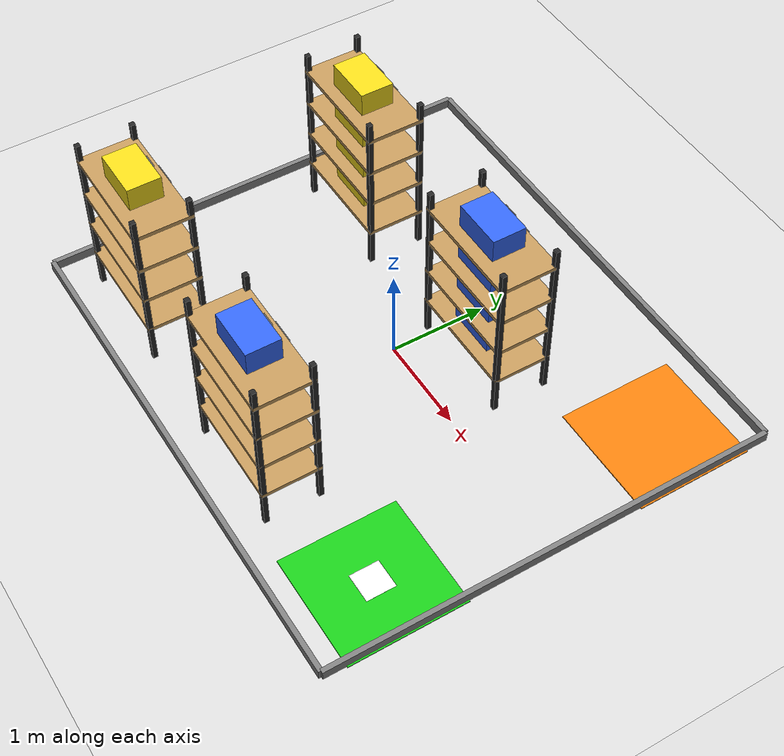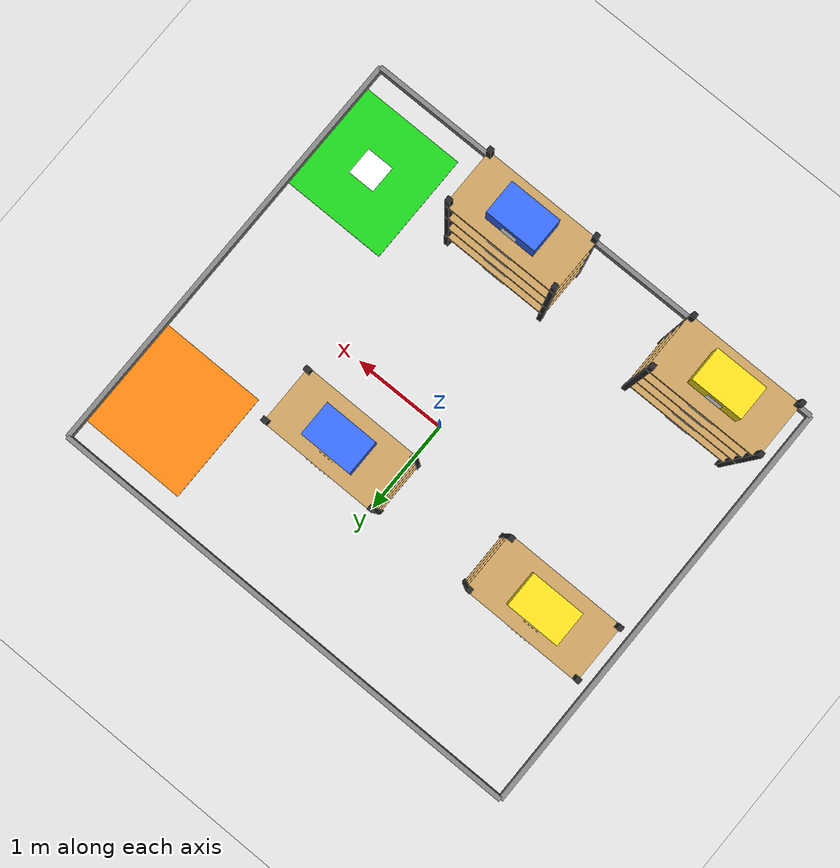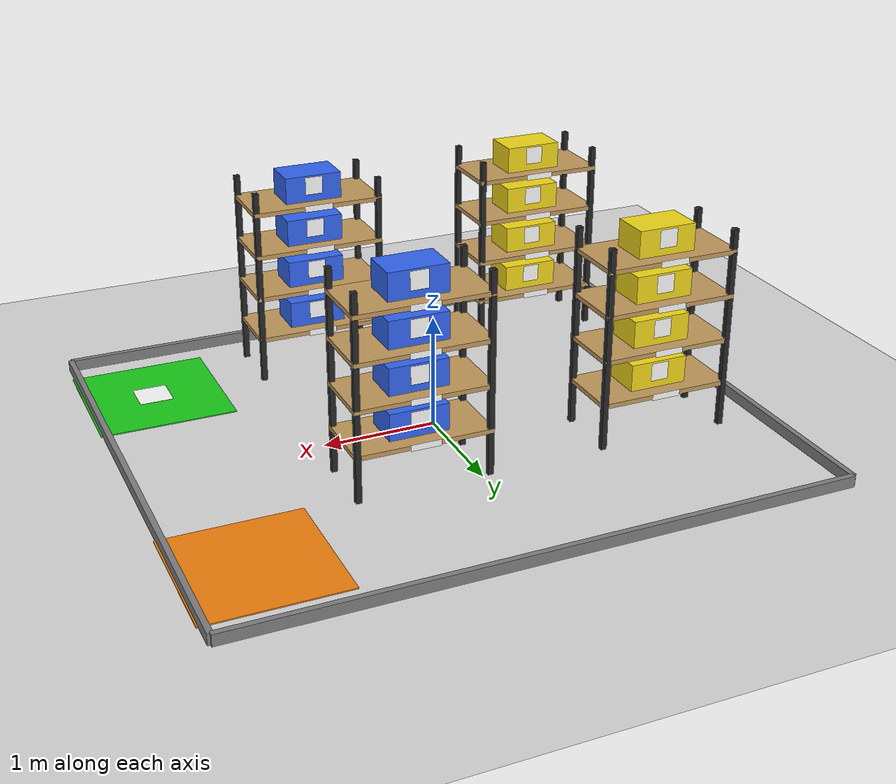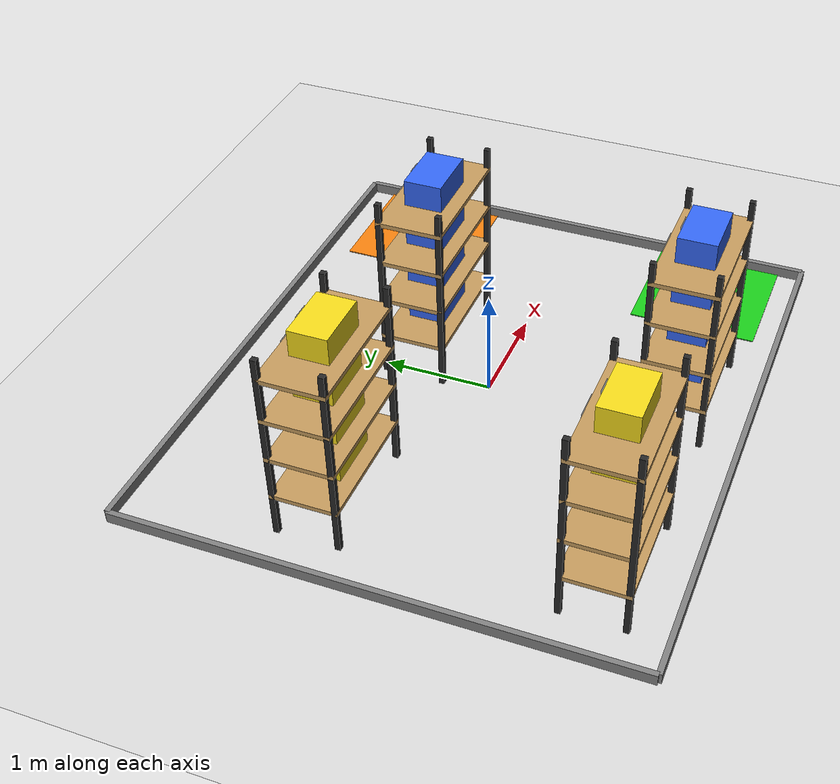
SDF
<?xml version='1.0' encoding='utf-8'?>
<sdf version="1.9">
  <world name="default">

    <plugin filename="gz-sim-physics-system" name="gz::sim::systems::Physics" />
    <plugin filename="gz-sim-user-commands-system" name="gz::sim::systems::UserCommands" />
    <plugin filename="gz-sim-scene-broadcaster-system" name="gz::sim::systems::SceneBroadcaster" />
    <plugin filename="gz-sim-sensors-system" name="gz::sim::systems::Sensors">
      <render_engine>ogre2</render_engine>
    </plugin>
    <plugin filename="gz-sim-imu-system" name="gz::sim::systems::Imu" />
    <plugin filename="gz-sim-air-pressure-system" name="gz::sim::systems::AirPressure" />
    <plugin filename="gz-sim-navsat-system" name="gz::sim::systems::NavSat" />
    <plugin filename="gz-sim-magnetometer-system" name="gz::sim::systems::Magnetometer" />

    <gravity>0 0 -9.8</gravity>
    <magnetic_field>6e-06 2.3e-05 -4.2e-05</magnetic_field>
    <atmosphere type="adiabatic" />

    <physics type="ode">
      <max_step_size>0.004</max_step_size>
      <real_time_factor>1.0</real_time_factor>
      <real_time_update_rate>250</real_time_update_rate>
    </physics>

    <scene>
      <grid>true</grid>
      <ambient>0.6 0.6 0.6 1</ambient>
      <background>0.8 0.8 0.8 1</background>
      <shadows>false</shadows>
    </scene>

    <light name="sun" type="directional">
      <pose>0 0 500 0 0 0</pose>
      <cast_shadows>true</cast_shadows>
      <intensity>1.0</intensity>
      <direction>0.001 0.625 -0.78</direction>
      <diffuse>0.904 0.904 0.904 1</diffuse>
      <specular>0.271 0.271 0.271 1</specular>
      <attenuation>
        <range>2000</range>
        <linear>0</linear>
        <constant>1</constant>
        <quadratic>0</quadratic>
      </attenuation>
    </light>

    <spherical_coordinates>
      <surface_model>EARTH_WGS84</surface_model>
      <world_frame_orientation>ENU</world_frame_orientation>
      <latitude_deg>47.397971057728974</latitude_deg>
      <longitude_deg>8.546163739800146</longitude_deg>
      <elevation>0</elevation>
    </spherical_coordinates>

    <model name="ground_plane">
      <static>true</static>
      <pose>0 0 0 0 0 0</pose>
      <link name="link">
        <collision name="collision">
          <geometry><plane><normal>0 0 1</normal><size>500 500</size></plane></geometry>
          <surface><friction><ode /></friction><bounce /><contact /></surface>
        </collision>
        <visual name="visual">
          <geometry><plane><normal>0 0 1</normal><size>500 500</size></plane></geometry>
          <material>
            <ambient>0.85 0.85 0.85 1</ambient>
            <diffuse>0.85 0.85 0.85 1</diffuse>
            <specular>0.85 0.85 0.85 1</specular>
          </material>
        </visual>
      </link>
    </model>

    <model name="wall_front"><static>true</static><pose>0 -2.325 0.05 0 0 0</pose>
      <link name="link">
        <visual name="v"><geometry><box><size>5.32 0.05 0.1</size></box></geometry>
          <material>
            <ambient>0.5 0.5 0.5 1</ambient>
            <diffuse>0.5 0.5 0.5 1</diffuse>
          </material></visual>
        <collision name="c"><geometry><box><size>5.32 0.05 0.1</size></box></geometry></collision>
      </link>
    </model>

    <model name="wall_back"><static>true</static><pose>0 2.325 0.05 0 0 0</pose>
      <link name="link">
        <visual name="v"><geometry><box><size>5.32 0.05 0.1</size></box></geometry>
          <material>
            <ambient>0.5 0.5 0.5 1</ambient>
            <diffuse>0.5 0.5 0.5 1</diffuse>
          </material></visual>
        <collision name="c"><geometry><box><size>5.32 0.05 0.1</size></box></geometry></collision>
      </link>
    </model>

    <model name="wall_left"><static>true</static><pose>-2.66 0 0.05 0 0 0</pose>
      <link name="link">
        <visual name="v"><geometry><box><size>0.05 4.65 0.1</size></box></geometry>
          <material>
            <ambient>0.5 0.5 0.5 1</ambient>
            <diffuse>0.5 0.5 0.5 1</diffuse>
          </material></visual>
        <collision name="c"><geometry><box><size>0.05 4.65 0.1</size></box></geometry></collision>
      </link>
    </model>

    <model name="wall_right"><static>true</static><pose>2.66 0 0.05 0 0 0</pose>
      <link name="link">
        <visual name="v"><geometry><box><size>0.05 4.65 0.1</size></box></geometry>
          <material>
            <ambient>0.5 0.5 0.5 1</ambient>
            <diffuse>0.5 0.5 0.5 1</diffuse>
          </material></visual>
        <collision name="c"><geometry><box><size>0.05 4.65 0.1</size></box></geometry></collision>
      </link>
    </model>

    <model name="rack_A04">
      <static>true</static>
      <pose>-1.7 0.7 0 0 0 0</pose>
      <link name="link">

        <visual name="post_fl"><pose>-0.575 -0.275 0.9 0 0 0</pose><geometry><box><size>0.05 0.05 1.8</size></box></geometry>
          <material>
            <ambient>0.15 0.15 0.15 1</ambient>
            <diffuse>0.15 0.15 0.15 1</diffuse>
          </material></visual>
        <collision name="post_fl"><pose>-0.575 -0.275 0.9 0 0 0</pose><geometry><box><size>0.05 0.05 1.8</size></box></geometry></collision>

        <visual name="post_fr"><pose>0.575 -0.275 0.9 0 0 0</pose><geometry><box><size>0.05 0.05 1.8</size></box></geometry>
          <material>
            <ambient>0.15 0.15 0.15 1</ambient>
            <diffuse>0.15 0.15 0.15 1</diffuse>
          </material></visual>
        <collision name="post_fr"><pose>0.575 -0.275 0.9 0 0 0</pose><geometry><box><size>0.05 0.05 1.8</size></box></geometry></collision>

        <visual name="post_bl"><pose>-0.575 0.275 0.9 0 0 0</pose><geometry><box><size>0.05 0.05 1.8</size></box></geometry>
          <material>
            <ambient>0.15 0.15 0.15 1</ambient>
            <diffuse>0.15 0.15 0.15 1</diffuse>
          </material></visual>
        <collision name="post_bl"><pose>-0.575 0.275 0.9 0 0 0</pose><geometry><box><size>0.05 0.05 1.8</size></box></geometry></collision>

        <visual name="post_br"><pose>0.575 0.275 0.9 0 0 0</pose><geometry><box><size>0.05 0.05 1.8</size></box></geometry>
          <material>
            <ambient>0.15 0.15 0.15 1</ambient>
            <diffuse>0.15 0.15 0.15 1</diffuse>
          </material></visual>
        <collision name="post_br"><pose>0.575 0.275 0.9 0 0 0</pose><geometry><box><size>0.05 0.05 1.8</size></box></geometry></collision>

        <visual name="shelf_1"><pose>0 0 0.4 0 0 0</pose><geometry><box><size>1.2 0.6 0.04</size></box></geometry>
          <material>
            <ambient>0.76 0.6 0.36 1</ambient>
            <diffuse>0.76 0.6 0.36 1</diffuse>
          </material></visual>
        <collision name="shelf_1"><pose>0 0 0.4 0 0 0</pose><geometry><box><size>1.2 0.6 0.04</size></box></geometry></collision>

        <visual name="shelf_2"><pose>0 0 0.8 0 0 0</pose><geometry><box><size>1.2 0.6 0.04</size></box></geometry>
          <material>
            <ambient>0.76 0.6 0.36 1</ambient>
            <diffuse>0.76 0.6 0.36 1</diffuse>
          </material></visual>
        <collision name="shelf_2"><pose>0 0 0.8 0 0 0</pose><geometry><box><size>1.2 0.6 0.04</size></box></geometry></collision>

        <visual name="shelf_3"><pose>0 0 1.2 0 0 0</pose><geometry><box><size>1.2 0.6 0.04</size></box></geometry>
          <material>
            <ambient>0.76 0.6 0.36 1</ambient>
            <diffuse>0.76 0.6 0.36 1</diffuse>
          </material></visual>
        <collision name="shelf_3"><pose>0 0 1.2 0 0 0</pose><geometry><box><size>1.2 0.6 0.04</size></box></geometry></collision>

        <visual name="shelf_4"><pose>0 0 1.6 0 0 0</pose><geometry><box><size>1.2 0.6 0.04</size></box></geometry>
          <material>
            <ambient>0.76 0.6 0.36 1</ambient>
            <diffuse>0.76 0.6 0.36 1</diffuse>
          </material></visual>
        <collision name="shelf_4"><pose>0 0 1.6 0 0 0</pose><geometry><box><size>1.2 0.6 0.04</size></box></geometry></collision>
      </link>
    </model>

    <model name="rack_A03">
      <static>true</static>
      <pose>0.5 0.7 0 0 0 0</pose>
      <link name="link">

        <visual name="post_fl"><pose>-0.575 -0.275 0.9 0 0 0</pose><geometry><box><size>0.05 0.05 1.8</size></box></geometry>
          <material>
            <ambient>0.15 0.15 0.15 1</ambient>
            <diffuse>0.15 0.15 0.15 1</diffuse>
          </material></visual>
        <collision name="post_fl"><pose>-0.575 -0.275 0.9 0 0 0</pose><geometry><box><size>0.05 0.05 1.8</size></box></geometry></collision>

        <visual name="post_fr"><pose>0.575 -0.275 0.9 0 0 0</pose><geometry><box><size>0.05 0.05 1.8</size></box></geometry>
          <material>
            <ambient>0.15 0.15 0.15 1</ambient>
            <diffuse>0.15 0.15 0.15 1</diffuse>
          </material></visual>
        <collision name="post_fr"><pose>0.575 -0.275 0.9 0 0 0</pose><geometry><box><size>0.05 0.05 1.8</size></box></geometry></collision>

        <visual name="post_bl"><pose>-0.575 0.275 0.9 0 0 0</pose><geometry><box><size>0.05 0.05 1.8</size></box></geometry>
          <material>
            <ambient>0.15 0.15 0.15 1</ambient>
            <diffuse>0.15 0.15 0.15 1</diffuse>
          </material></visual>
        <collision name="post_bl"><pose>-0.575 0.275 0.9 0 0 0</pose><geometry><box><size>0.05 0.05 1.8</size></box></geometry></collision>

        <visual name="post_br"><pose>0.575 0.275 0.9 0 0 0</pose><geometry><box><size>0.05 0.05 1.8</size></box></geometry>
          <material>
            <ambient>0.15 0.15 0.15 1</ambient>
            <diffuse>0.15 0.15 0.15 1</diffuse>
          </material></visual>
        <collision name="post_br"><pose>0.575 0.275 0.9 0 0 0</pose><geometry><box><size>0.05 0.05 1.8</size></box></geometry></collision>

        <visual name="shelf_1"><pose>0 0 0.4 0 0 0</pose><geometry><box><size>1.2 0.6 0.04</size></box></geometry>
          <material>
            <ambient>0.76 0.6 0.36 1</ambient>
            <diffuse>0.76 0.6 0.36 1</diffuse>
          </material></visual>
        <collision name="shelf_1"><pose>0 0 0.4 0 0 0</pose><geometry><box><size>1.2 0.6 0.04</size></box></geometry></collision>

        <visual name="shelf_2"><pose>0 0 0.8 0 0 0</pose><geometry><box><size>1.2 0.6 0.04</size></box></geometry>
          <material>
            <ambient>0.76 0.6 0.36 1</ambient>
            <diffuse>0.76 0.6 0.36 1</diffuse>
          </material></visual>
        <collision name="shelf_2"><pose>0 0 0.8 0 0 0</pose><geometry><box><size>1.2 0.6 0.04</size></box></geometry></collision>

        <visual name="shelf_3"><pose>0 0 1.2 0 0 0</pose><geometry><box><size>1.2 0.6 0.04</size></box></geometry>
          <material>
            <ambient>0.76 0.6 0.36 1</ambient>
            <diffuse>0.76 0.6 0.36 1</diffuse>
          </material></visual>
        <collision name="shelf_3"><pose>0 0 1.2 0 0 0</pose><geometry><box><size>1.2 0.6 0.04</size></box></geometry></collision>

        <visual name="shelf_4"><pose>0 0 1.6 0 0 0</pose><geometry><box><size>1.2 0.6 0.04</size></box></geometry>
          <material>
            <ambient>0.76 0.6 0.36 1</ambient>
            <diffuse>0.76 0.6 0.36 1</diffuse>
          </material></visual>
        <collision name="shelf_4"><pose>0 0 1.6 0 0 0</pose><geometry><box><size>1.2 0.6 0.04</size></box></geometry></collision>
      </link>
    </model>

    <model name="rack_A02">
      <static>true</static>
      <pose>-1.7 -1.7 0 0 0 0</pose>
      <link name="link">

        <visual name="post_fl"><pose>-0.575 -0.275 0.9 0 0 0</pose><geometry><box><size>0.05 0.05 1.8</size></box></geometry>
          <material>
            <ambient>0.15 0.15 0.15 1</ambient>
            <diffuse>0.15 0.15 0.15 1</diffuse>
          </material></visual>
        <collision name="post_fl"><pose>-0.575 -0.275 0.9 0 0 0</pose><geometry><box><size>0.05 0.05 1.8</size></box></geometry></collision>

        <visual name="post_fr"><pose>0.575 -0.275 0.9 0 0 0</pose><geometry><box><size>0.05 0.05 1.8</size></box></geometry>
          <material>
            <ambient>0.15 0.15 0.15 1</ambient>
            <diffuse>0.15 0.15 0.15 1</diffuse>
          </material></visual>
        <collision name="post_fr"><pose>0.575 -0.275 0.9 0 0 0</pose><geometry><box><size>0.05 0.05 1.8</size></box></geometry></collision>

        <visual name="post_bl"><pose>-0.575 0.275 0.9 0 0 0</pose><geometry><box><size>0.05 0.05 1.8</size></box></geometry>
          <material>
            <ambient>0.15 0.15 0.15 1</ambient>
            <diffuse>0.15 0.15 0.15 1</diffuse>
          </material></visual>
        <collision name="post_bl"><pose>-0.575 0.275 0.9 0 0 0</pose><geometry><box><size>0.05 0.05 1.8</size></box></geometry></collision>

        <visual name="post_br"><pose>0.575 0.275 0.9 0 0 0</pose><geometry><box><size>0.05 0.05 1.8</size></box></geometry>
          <material>
            <ambient>0.15 0.15 0.15 1</ambient>
            <diffuse>0.15 0.15 0.15 1</diffuse>
          </material></visual>
        <collision name="post_br"><pose>0.575 0.275 0.9 0 0 0</pose><geometry><box><size>0.05 0.05 1.8</size></box></geometry></collision>

        <visual name="shelf_1"><pose>0 0 0.4 0 0 0</pose><geometry><box><size>1.2 0.6 0.04</size></box></geometry>
          <material>
            <ambient>0.76 0.6 0.36 1</ambient>
            <diffuse>0.76 0.6 0.36 1</diffuse>
          </material></visual>
        <collision name="shelf_1"><pose>0 0 0.4 0 0 0</pose><geometry><box><size>1.2 0.6 0.04</size></box></geometry></collision>

        <visual name="shelf_2"><pose>0 0 0.8 0 0 0</pose><geometry><box><size>1.2 0.6 0.04</size></box></geometry>
          <material>
            <ambient>0.76 0.6 0.36 1</ambient>
            <diffuse>0.76 0.6 0.36 1</diffuse>
          </material></visual>
        <collision name="shelf_2"><pose>0 0 0.8 0 0 0</pose><geometry><box><size>1.2 0.6 0.04</size></box></geometry></collision>

        <visual name="shelf_3"><pose>0 0 1.2 0 0 0</pose><geometry><box><size>1.2 0.6 0.04</size></box></geometry>
          <material>
            <ambient>0.76 0.6 0.36 1</ambient>
            <diffuse>0.76 0.6 0.36 1</diffuse>
          </material></visual>
        <collision name="shelf_3"><pose>0 0 1.2 0 0 0</pose><geometry><box><size>1.2 0.6 0.04</size></box></geometry></collision>

        <visual name="shelf_4"><pose>0 0 1.6 0 0 0</pose><geometry><box><size>1.2 0.6 0.04</size></box></geometry>
          <material>
            <ambient>0.76 0.6 0.36 1</ambient>
            <diffuse>0.76 0.6 0.36 1</diffuse>
          </material></visual>
        <collision name="shelf_4"><pose>0 0 1.6 0 0 0</pose><geometry><box><size>1.2 0.6 0.04</size></box></geometry></collision>
      </link>
    </model>

    <model name="rack_A01">
      <static>true</static>
      <pose>0.5 -1.7 0 0 0 0</pose>
      <link name="link">

        <visual name="post_fl"><pose>-0.575 -0.275 0.9 0 0 0</pose><geometry><box><size>0.05 0.05 1.8</size></box></geometry>
          <material>
            <ambient>0.15 0.15 0.15 1</ambient>
            <diffuse>0.15 0.15 0.15 1</diffuse>
          </material></visual>
        <collision name="post_fl"><pose>-0.575 -0.275 0.9 0 0 0</pose><geometry><box><size>0.05 0.05 1.8</size></box></geometry></collision>

        <visual name="post_fr"><pose>0.575 -0.275 0.9 0 0 0</pose><geometry><box><size>0.05 0.05 1.8</size></box></geometry>
          <material>
            <ambient>0.15 0.15 0.15 1</ambient>
            <diffuse>0.15 0.15 0.15 1</diffuse>
          </material></visual>
        <collision name="post_fr"><pose>0.575 -0.275 0.9 0 0 0</pose><geometry><box><size>0.05 0.05 1.8</size></box></geometry></collision>

        <visual name="post_bl"><pose>-0.575 0.275 0.9 0 0 0</pose><geometry><box><size>0.05 0.05 1.8</size></box></geometry>
          <material>
            <ambient>0.15 0.15 0.15 1</ambient>
            <diffuse>0.15 0.15 0.15 1</diffuse>
          </material></visual>
        <collision name="post_bl"><pose>-0.575 0.275 0.9 0 0 0</pose><geometry><box><size>0.05 0.05 1.8</size></box></geometry></collision>

        <visual name="post_br"><pose>0.575 0.275 0.9 0 0 0</pose><geometry><box><size>0.05 0.05 1.8</size></box></geometry>
          <material>
            <ambient>0.15 0.15 0.15 1</ambient>
            <diffuse>0.15 0.15 0.15 1</diffuse>
          </material></visual>
        <collision name="post_br"><pose>0.575 0.275 0.9 0 0 0</pose><geometry><box><size>0.05 0.05 1.8</size></box></geometry></collision>

        <visual name="shelf_1"><pose>0 0 0.4 0 0 0</pose><geometry><box><size>1.2 0.6 0.04</size></box></geometry>
          <material>
            <ambient>0.76 0.6 0.36 1</ambient>
            <diffuse>0.76 0.6 0.36 1</diffuse>
          </material></visual>
        <collision name="shelf_1"><pose>0 0 0.4 0 0 0</pose><geometry><box><size>1.2 0.6 0.04</size></box></geometry></collision>

        <visual name="shelf_2"><pose>0 0 0.8 0 0 0</pose><geometry><box><size>1.2 0.6 0.04</size></box></geometry>
          <material>
            <ambient>0.76 0.6 0.36 1</ambient>
            <diffuse>0.76 0.6 0.36 1</diffuse>
          </material></visual>
        <collision name="shelf_2"><pose>0 0 0.8 0 0 0</pose><geometry><box><size>1.2 0.6 0.04</size></box></geometry></collision>

        <visual name="shelf_3"><pose>0 0 1.2 0 0 0</pose><geometry><box><size>1.2 0.6 0.04</size></box></geometry>
          <material>
            <ambient>0.76 0.6 0.36 1</ambient>
            <diffuse>0.76 0.6 0.36 1</diffuse>
          </material></visual>
        <collision name="shelf_3"><pose>0 0 1.2 0 0 0</pose><geometry><box><size>1.2 0.6 0.04</size></box></geometry></collision>

        <visual name="shelf_4"><pose>0 0 1.6 0 0 0</pose><geometry><box><size>1.2 0.6 0.04</size></box></geometry>
          <material>
            <ambient>0.76 0.6 0.36 1</ambient>
            <diffuse>0.76 0.6 0.36 1</diffuse>
          </material></visual>
        <collision name="shelf_4"><pose>0 0 1.6 0 0 0</pose><geometry><box><size>1.2 0.6 0.04</size></box></geometry></collision>
      </link>
    </model>

    <model name="box_A_04_L1">
      <static>true</static>
      <pose>-1.700 0.700 0.540 0 0 0</pose>
      <link name="link">
        <visual name="visual">
          <geometry><box><size>0.52 0.34 0.24</size></box></geometry>
          <material>
            <ambient>0.95 0.85 0.1 1</ambient>
            <diffuse>0.95 0.85 0.1 1</diffuse>
          </material>
        </visual>
        <collision name="collision">
          <geometry><box><size>0.52 0.34 0.24</size></box></geometry>
        </collision>
      </link>
    </model>

    <model name="box_A_04_L2">
      <static>true</static>
      <pose>-1.700 0.700 0.940 0 0 0</pose>
      <link name="link">
        <visual name="visual">
          <geometry><box><size>0.52 0.34 0.24</size></box></geometry>
          <material>
            <ambient>0.95 0.85 0.1 1</ambient>
            <diffuse>0.95 0.85 0.1 1</diffuse>
          </material>
        </visual>
        <collision name="collision">
          <geometry><box><size>0.52 0.34 0.24</size></box></geometry>
        </collision>
      </link>
    </model>

    <model name="box_A_04_L3">
      <static>true</static>
      <pose>-1.700 0.700 1.340 0 0 0</pose>
      <link name="link">
        <visual name="visual">
          <geometry><box><size>0.52 0.34 0.24</size></box></geometry>
          <material>
            <ambient>0.95 0.85 0.1 1</ambient>
            <diffuse>0.95 0.85 0.1 1</diffuse>
          </material>
        </visual>
        <collision name="collision">
          <geometry><box><size>0.52 0.34 0.24</size></box></geometry>
        </collision>
      </link>
    </model>

    <model name="box_A_04_L4">
      <static>true</static>
      <pose>-1.700 0.700 1.740 0 0 0</pose>
      <link name="link">
        <visual name="visual">
          <geometry><box><size>0.52 0.34 0.24</size></box></geometry>
          <material>
            <ambient>0.95 0.85 0.1 1</ambient>
            <diffuse>0.95 0.85 0.1 1</diffuse>
          </material>
        </visual>
        <collision name="collision">
          <geometry><box><size>0.52 0.34 0.24</size></box></geometry>
        </collision>
      </link>
    </model>

    <model name="box_A_03_L1">
      <static>true</static>
      <pose>0.500 0.700 0.540 0 0 0</pose>
      <link name="link">
        <visual name="visual">
          <geometry><box><size>0.52 0.34 0.24</size></box></geometry>
          <material>
            <ambient>0.2 0.4 0.95 1</ambient>
            <diffuse>0.2 0.4 0.95 1</diffuse>
          </material>
        </visual>
        <collision name="collision">
          <geometry><box><size>0.52 0.34 0.24</size></box></geometry>
        </collision>
      </link>
    </model>

    <model name="box_A_03_L2">
      <static>true</static>
      <pose>0.500 0.700 0.940 0 0 0</pose>
      <link name="link">
        <visual name="visual">
          <geometry><box><size>0.52 0.34 0.24</size></box></geometry>
          <material>
            <ambient>0.2 0.4 0.95 1</ambient>
            <diffuse>0.2 0.4 0.95 1</diffuse>
          </material>
        </visual>
        <collision name="collision">
          <geometry><box><size>0.52 0.34 0.24</size></box></geometry>
        </collision>
      </link>
    </model>

    <model name="box_A_03_L3">
      <static>true</static>
      <pose>0.500 0.700 1.340 0 0 0</pose>
      <link name="link">
        <visual name="visual">
          <geometry><box><size>0.52 0.34 0.24</size></box></geometry>
          <material>
            <ambient>0.2 0.4 0.95 1</ambient>
            <diffuse>0.2 0.4 0.95 1</diffuse>
          </material>
        </visual>
        <collision name="collision">
          <geometry><box><size>0.52 0.34 0.24</size></box></geometry>
        </collision>
      </link>
    </model>

    <model name="box_A_03_L4">
      <static>true</static>
      <pose>0.500 0.700 1.740 0 0 0</pose>
      <link name="link">
        <visual name="visual">
          <geometry><box><size>0.52 0.34 0.24</size></box></geometry>
          <material>
            <ambient>0.2 0.4 0.95 1</ambient>
            <diffuse>0.2 0.4 0.95 1</diffuse>
          </material>
        </visual>
        <collision name="collision">
          <geometry><box><size>0.52 0.34 0.24</size></box></geometry>
        </collision>
      </link>
    </model>

    <model name="box_A_02_L1">
      <static>true</static>
      <pose>-1.700 -1.700 0.540 0 0 0</pose>
      <link name="link">
        <visual name="visual">
          <geometry><box><size>0.52 0.34 0.24</size></box></geometry>
          <material>
            <ambient>0.95 0.85 0.1 1</ambient>
            <diffuse>0.95 0.85 0.1 1</diffuse>
          </material>
        </visual>
        <collision name="collision">
          <geometry><box><size>0.52 0.34 0.24</size></box></geometry>
        </collision>
      </link>
    </model>

    <model name="box_A_02_L2">
      <static>true</static>
      <pose>-1.700 -1.700 0.940 0 0 0</pose>
      <link name="link">
        <visual name="visual">
          <geometry><box><size>0.52 0.34 0.24</size></box></geometry>
          <material>
            <ambient>0.95 0.85 0.1 1</ambient>
            <diffuse>0.95 0.85 0.1 1</diffuse>
          </material>
        </visual>
        <collision name="collision">
          <geometry><box><size>0.52 0.34 0.24</size></box></geometry>
        </collision>
      </link>
    </model>

    <model name="box_A_02_L3">
      <static>true</static>
      <pose>-1.700 -1.700 1.340 0 0 0</pose>
      <link name="link">
        <visual name="visual">
          <geometry><box><size>0.52 0.34 0.24</size></box></geometry>
          <material>
            <ambient>0.95 0.85 0.1 1</ambient>
            <diffuse>0.95 0.85 0.1 1</diffuse>
          </material>
        </visual>
        <collision name="collision">
          <geometry><box><size>0.52 0.34 0.24</size></box></geometry>
        </collision>
      </link>
    </model>

    <model name="box_A_02_L4">
      <static>true</static>
      <pose>-1.700 -1.700 1.740 0 0 0</pose>
      <link name="link">
        <visual name="visual">
          <geometry><box><size>0.52 0.34 0.24</size></box></geometry>
          <material>
            <ambient>0.95 0.85 0.1 1</ambient>
            <diffuse>0.95 0.85 0.1 1</diffuse>
          </material>
        </visual>
        <collision name="collision">
          <geometry><box><size>0.52 0.34 0.24</size></box></geometry>
        </collision>
      </link>
    </model>

    <model name="box_A_01_L1">
      <static>true</static>
      <pose>0.500 -1.700 0.540 0 0 0</pose>
      <link name="link">
        <visual name="visual">
          <geometry><box><size>0.52 0.34 0.24</size></box></geometry>
          <material>
            <ambient>0.2 0.4 0.95 1</ambient>
            <diffuse>0.2 0.4 0.95 1</diffuse>
          </material>
        </visual>
        <collision name="collision">
          <geometry><box><size>0.52 0.34 0.24</size></box></geometry>
        </collision>
      </link>
    </model>

    <model name="box_A_01_L2">
      <static>true</static>
      <pose>0.500 -1.700 0.940 0 0 0</pose>
      <link name="link">
        <visual name="visual">
          <geometry><box><size>0.52 0.34 0.24</size></box></geometry>
          <material>
            <ambient>0.2 0.4 0.95 1</ambient>
            <diffuse>0.2 0.4 0.95 1</diffuse>
          </material>
        </visual>
        <collision name="collision">
          <geometry><box><size>0.52 0.34 0.24</size></box></geometry>
        </collision>
      </link>
    </model>

    <model name="box_A_01_L3">
      <static>true</static>
      <pose>0.500 -1.700 1.340 0 0 0</pose>
      <link name="link">
        <visual name="visual">
          <geometry><box><size>0.52 0.34 0.24</size></box></geometry>
          <material>
            <ambient>0.2 0.4 0.95 1</ambient>
            <diffuse>0.2 0.4 0.95 1</diffuse>
          </material>
        </visual>
        <collision name="collision">
          <geometry><box><size>0.52 0.34 0.24</size></box></geometry>
        </collision>
      </link>
    </model>

    <model name="box_A_01_L4">
      <static>true</static>
      <pose>0.500 -1.700 1.740 0 0 0</pose>
      <link name="link">
        <visual name="visual">
          <geometry><box><size>0.52 0.34 0.24</size></box></geometry>
          <material>
            <ambient>0.2 0.4 0.95 1</ambient>
            <diffuse>0.2 0.4 0.95 1</diffuse>
          </material>
        </visual>
        <collision name="collision">
          <geometry><box><size>0.52 0.34 0.24</size></box></geometry>
        </collision>
      </link>
    </model>

    <model name="inventory_qr_A04_L1">
      <static>true</static>
      <pose>-1.70000 0.88500 0.57000 1.57080 0.00000 3.14159</pose>
      <link name="link">
        <visual name="visual">
          <cast_shadows>false</cast_shadows>
          <geometry>
            <plane>
              <normal>0 0 1</normal>
              <size>0.16 0.16</size>
            </plane>
          </geometry>

          <material>
            <ambient>1 1 1 1</ambient>
            <diffuse>1 1 1 1</diffuse>
            <pbr>
              <metal>
                <albedo_map>file:///home/jiho/capstone_ws/src/warehouse_offboard/worlds/inventory_qr_labels_unique/QR_ONLY_A_04_L1.png</albedo_map>
                <metalness>0.0</metalness>
                <roughness>1.0</roughness>
              </metal>
            </pbr>
          </material>
        </visual>
      </link>
    </model>

    <model name="inventory_text_A04_L1">
      <static>true</static>
      <pose>-1.70000 1.00600 0.40000 1.57080 0.00000 3.14159</pose>
      <link name="link">
        <visual name="visual">
          <cast_shadows>false</cast_shadows>
          <geometry>
            <plane>
              <normal>0 0 1</normal>
              <size>0.26 0.055</size>
            </plane>
          </geometry>

          <material>
            <ambient>1 1 1 1</ambient>
            <diffuse>1 1 1 1</diffuse>
            <pbr>
              <metal>
                <albedo_map>file:///home/jiho/capstone_ws/src/warehouse_offboard/worlds/inventory_text_labels_unique/TEXT_ONLY_A_04_L1.png</albedo_map>
              </metal>
            </pbr>
          </material>
        </visual>
      </link>
    </model>

    <model name="inventory_qr_A04_L2">
      <static>true</static>
      <pose>-1.70000 0.88500 0.97000 1.57080 0.00000 3.14159</pose>
      <link name="link">
        <visual name="visual">
          <cast_shadows>false</cast_shadows>
          <geometry>
            <plane>
              <normal>0 0 1</normal>
              <size>0.16 0.16</size>
            </plane>
          </geometry>

          <material>
            <ambient>1 1 1 1</ambient>
            <diffuse>1 1 1 1</diffuse>
            <pbr>
              <metal>
                <albedo_map>file:///home/jiho/capstone_ws/src/warehouse_offboard/worlds/inventory_qr_labels_unique/QR_ONLY_A_04_L2.png</albedo_map>
                <metalness>0.0</metalness>
                <roughness>1.0</roughness>
              </metal>
            </pbr>
          </material>
        </visual>
      </link>
    </model>

    <model name="inventory_text_A04_L2">
      <static>true</static>
      <pose>-1.70000 1.00600 0.80000 1.57080 0.00000 3.14159</pose>
      <link name="link">
        <visual name="visual">
          <cast_shadows>false</cast_shadows>
          <geometry>
            <plane>
              <normal>0 0 1</normal>
              <size>0.26 0.055</size>
            </plane>
          </geometry>

          <material>
            <ambient>1 1 1 1</ambient>
            <diffuse>1 1 1 1</diffuse>
            <pbr>
              <metal>
                <albedo_map>file:///home/jiho/capstone_ws/src/warehouse_offboard/worlds/inventory_text_labels_unique/TEXT_ONLY_A_04_L2.png</albedo_map>
              </metal>
            </pbr>
          </material>
        </visual>
      </link>
    </model>

    <model name="inventory_qr_A04_L3">
      <static>true</static>
      <pose>-1.70000 0.88500 1.37000 1.57080 0.00000 3.14159</pose>
      <link name="link">
        <visual name="visual">
          <cast_shadows>false</cast_shadows>
          <geometry>
            <plane>
              <normal>0 0 1</normal>
              <size>0.16 0.16</size>
            </plane>
          </geometry>

          <material>
            <ambient>1 1 1 1</ambient>
            <diffuse>1 1 1 1</diffuse>
            <pbr>
              <metal>
                <albedo_map>file:///home/jiho/capstone_ws/src/warehouse_offboard/worlds/inventory_qr_labels_unique/QR_ONLY_A_04_L3.png</albedo_map>
                <metalness>0.0</metalness>
                <roughness>1.0</roughness>
              </metal>
            </pbr>
          </material>
        </visual>
      </link>
    </model>

    <model name="inventory_text_A04_L3">
      <static>true</static>
      <pose>-1.70000 1.00600 1.20000 1.57080 0.00000 3.14159</pose>
      <link name="link">
        <visual name="visual">
          <cast_shadows>false</cast_shadows>
          <geometry>
            <plane>
              <normal>0 0 1</normal>
              <size>0.26 0.055</size>
            </plane>
          </geometry>

          <material>
            <ambient>1 1 1 1</ambient>
            <diffuse>1 1 1 1</diffuse>
            <pbr>
              <metal>
                <albedo_map>file:///home/jiho/capstone_ws/src/warehouse_offboard/worlds/inventory_text_labels_unique/TEXT_ONLY_A_04_L3.png</albedo_map>
              </metal>
            </pbr>
          </material>
        </visual>
      </link>
    </model>

    <model name="inventory_qr_A04_L4">
      <static>true</static>
      <pose>-1.70000 0.88500 1.77000 1.57080 0.00000 3.14159</pose>
      <link name="link">
        <visual name="visual">
          <cast_shadows>false</cast_shadows>
          <geometry>
            <plane>
              <normal>0 0 1</normal>
              <size>0.16 0.16</size>
            </plane>
          </geometry>

          <material>
            <ambient>1 1 1 1</ambient>
            <diffuse>1 1 1 1</diffuse>
            <pbr>
              <metal>
                <albedo_map>file:///home/jiho/capstone_ws/src/warehouse_offboard/worlds/inventory_qr_labels_unique/QR_ONLY_A_04_L4.png</albedo_map>
                <metalness>0.0</metalness>
                <roughness>1.0</roughness>
              </metal>
            </pbr>
          </material>
        </visual>
      </link>
    </model>

    <model name="inventory_text_A04_L4">
      <static>true</static>
      <pose>-1.70000 1.00600 1.60000 1.57080 0.00000 3.14159</pose>
      <link name="link">
        <visual name="visual">
          <cast_shadows>false</cast_shadows>
          <geometry>
            <plane>
              <normal>0 0 1</normal>
              <size>0.26 0.055</size>
            </plane>
          </geometry>

          <material>
            <ambient>1 1 1 1</ambient>
            <diffuse>1 1 1 1</diffuse>
            <pbr>
              <metal>
                <albedo_map>file:///home/jiho/capstone_ws/src/warehouse_offboard/worlds/inventory_text_labels_unique/TEXT_ONLY_A_04_L4.png</albedo_map>
              </metal>
            </pbr>
          </material>
        </visual>
      </link>
    </model>

    <model name="inventory_qr_A03_L1">
      <static>true</static>
      <pose>0.50000 0.88500 0.57000 1.57080 0.00000 3.14159</pose>
      <link name="link">
        <visual name="visual">
          <cast_shadows>false</cast_shadows>
          <geometry>
            <plane>
              <normal>0 0 1</normal>
              <size>0.16 0.16</size>
            </plane>
          </geometry>

          <material>
            <ambient>1 1 1 1</ambient>
            <diffuse>1 1 1 1</diffuse>
            <pbr>
              <metal>
                <albedo_map>file:///home/jiho/capstone_ws/src/warehouse_offboard/worlds/inventory_qr_labels_unique/QR_ONLY_A_03_L1.png</albedo_map>
                <metalness>0.0</metalness>
                <roughness>1.0</roughness>
              </metal>
            </pbr>
          </material>
        </visual>
      </link>
    </model>

    <model name="inventory_text_A03_L1">
      <static>true</static>
      <pose>0.50000 1.00600 0.40000 1.57080 0.00000 3.14159</pose>
      <link name="link">
        <visual name="visual">
          <cast_shadows>false</cast_shadows>
          <geometry>
            <plane>
              <normal>0 0 1</normal>
              <size>0.26 0.055</size>
            </plane>
          </geometry>

          <material>
            <ambient>1 1 1 1</ambient>
            <diffuse>1 1 1 1</diffuse>
            <pbr>
              <metal>
                <albedo_map>file:///home/jiho/capstone_ws/src/warehouse_offboard/worlds/inventory_text_labels_unique/TEXT_ONLY_A_03_L1.png</albedo_map>
              </metal>
            </pbr>
          </material>
        </visual>
      </link>
    </model>

    <model name="inventory_qr_A03_L2">
      <static>true</static>
      <pose>0.50000 0.88500 0.97000 1.57080 0.00000 3.14159</pose>
      <link name="link">
        <visual name="visual">
          <cast_shadows>false</cast_shadows>
          <geometry>
            <plane>
              <normal>0 0 1</normal>
              <size>0.16 0.16</size>
            </plane>
          </geometry>

          <material>
            <ambient>1 1 1 1</ambient>
            <diffuse>1 1 1 1</diffuse>
            <pbr>
              <metal>
                <albedo_map>file:///home/jiho/capstone_ws/src/warehouse_offboard/worlds/inventory_qr_labels_unique/QR_ONLY_A_03_L2.png</albedo_map>
                <metalness>0.0</metalness>
                <roughness>1.0</roughness>
              </metal>
            </pbr>
          </material>
        </visual>
      </link>
    </model>

    <model name="inventory_text_A03_L2">
      <static>true</static>
      <pose>0.50000 1.00600 0.80000 1.57080 0.00000 3.14159</pose>
      <link name="link">
        <visual name="visual">
          <cast_shadows>false</cast_shadows>
          <geometry>
            <plane>
              <normal>0 0 1</normal>
              <size>0.26 0.055</size>
            </plane>
          </geometry>

          <material>
            <ambient>1 1 1 1</ambient>
            <diffuse>1 1 1 1</diffuse>
            <pbr>
              <metal>
                <albedo_map>file:///home/jiho/capstone_ws/src/warehouse_offboard/worlds/inventory_text_labels_unique/TEXT_ONLY_A_03_L2.png</albedo_map>
              </metal>
            </pbr>
          </material>
        </visual>
      </link>
    </model>

    <model name="inventory_qr_A03_L3">
      <static>true</static>
      <pose>0.50000 0.88500 1.37000 1.57080 0.00000 3.14159</pose>
      <link name="link">
        <visual name="visual">
          <cast_shadows>false</cast_shadows>
          <geometry>
            <plane>
              <normal>0 0 1</normal>
              <size>0.16 0.16</size>
            </plane>
          </geometry>

          <material>
            <ambient>1 1 1 1</ambient>
            <diffuse>1 1 1 1</diffuse>
            <pbr>
              <metal>
                <albedo_map>file:///home/jiho/capstone_ws/src/warehouse_offboard/worlds/inventory_qr_labels_unique/QR_ONLY_A_03_L3.png</albedo_map>
                <metalness>0.0</metalness>
                <roughness>1.0</roughness>
              </metal>
            </pbr>
          </material>
        </visual>
      </link>
    </model>

    <model name="inventory_text_A03_L3">
      <static>true</static>
      <pose>0.50000 1.00600 1.20000 1.57080 0.00000 3.14159</pose>
      <link name="link">
        <visual name="visual">
          <cast_shadows>false</cast_shadows>
          <geometry>
            <plane>
              <normal>0 0 1</normal>
              <size>0.26 0.055</size>
            </plane>
          </geometry>

          <material>
            <ambient>1 1 1 1</ambient>
            <diffuse>1 1 1 1</diffuse>
            <pbr>
              <metal>
                <albedo_map>file:///home/jiho/capstone_ws/src/warehouse_offboard/worlds/inventory_text_labels_unique/TEXT_ONLY_A_03_L3.png</albedo_map>
              </metal>
            </pbr>
          </material>
        </visual>
      </link>
    </model>

    <model name="inventory_qr_A03_L4">
      <static>true</static>
      <pose>0.50000 0.88500 1.77000 1.57080 0.00000 3.14159</pose>
      <link name="link">
        <visual name="visual">
          <cast_shadows>false</cast_shadows>
          <geometry>
            <plane>
              <normal>0 0 1</normal>
              <size>0.16 0.16</size>
            </plane>
          </geometry>

          <material>
            <ambient>1 1 1 1</ambient>
            <diffuse>1 1 1 1</diffuse>
            <pbr>
              <metal>
                <albedo_map>file:///home/jiho/capstone_ws/src/warehouse_offboard/worlds/inventory_qr_labels_unique/QR_ONLY_A_03_L4.png</albedo_map>
                <metalness>0.0</metalness>
                <roughness>1.0</roughness>
              </metal>
            </pbr>
          </material>
        </visual>
      </link>
    </model>

    <model name="inventory_text_A03_L4">
      <static>true</static>
      <pose>0.50000 1.00600 1.60000 1.57080 0.00000 3.14159</pose>
      <link name="link">
        <visual name="visual">
          <cast_shadows>false</cast_shadows>
          <geometry>
            <plane>
              <normal>0 0 1</normal>
              <size>0.26 0.055</size>
            </plane>
          </geometry>

          <material>
            <ambient>1 1 1 1</ambient>
            <diffuse>1 1 1 1</diffuse>
            <pbr>
              <metal>
                <albedo_map>file:///home/jiho/capstone_ws/src/warehouse_offboard/worlds/inventory_text_labels_unique/TEXT_ONLY_A_03_L4.png</albedo_map>
              </metal>
            </pbr>
          </material>
        </visual>
      </link>
    </model>

    <model name="inventory_qr_A02_L1">
      <static>true</static>
      <pose>-1.700 -1.515 0.570 -1.57080 0 0</pose>
      <link name="link">
        <visual name="visual">
          <cast_shadows>false</cast_shadows>
          <geometry>
            <plane>
              <normal>0 0 1</normal>
              <size>0.16 0.16</size>
            </plane>
          </geometry>

          <material>
            <ambient>1 1 1 1</ambient>
            <diffuse>1 1 1 1</diffuse>
            <pbr>
              <metal>
                <albedo_map>file:///home/jiho/capstone_ws/src/warehouse_offboard/worlds/inventory_qr_labels_unique/QR_ONLY_A_02_L1.png</albedo_map>
                <metalness>0.0</metalness>
                <roughness>1.0</roughness>
              </metal>
            </pbr>
          </material>
        </visual>
      </link>
    </model>

    <model name="inventory_text_A02_L1">
      <static>true</static>
      <pose>-1.700 -1.394 0.400 -1.57080 0 0</pose>
      <link name="link">
        <visual name="visual">
          <cast_shadows>false</cast_shadows>
          <geometry>
            <plane>
              <normal>0 0 1</normal>
              <size>0.26 0.055</size>
            </plane>
          </geometry>

          <material>
            <ambient>1 1 1 1</ambient>
            <diffuse>1 1 1 1</diffuse>
            <pbr>
              <metal>
                <albedo_map>file:///home/jiho/capstone_ws/src/warehouse_offboard/worlds/inventory_text_labels_unique/TEXT_ONLY_A_02_L1.png</albedo_map>
              </metal>
            </pbr>
          </material>
        </visual>
      </link>
    </model>

    <model name="inventory_qr_A02_L2">
      <static>true</static>
      <pose>-1.700 -1.515 0.970 -1.57080 0 0</pose>
      <link name="link">
        <visual name="visual">
          <cast_shadows>false</cast_shadows>
          <geometry>
            <plane>
              <normal>0 0 1</normal>
              <size>0.16 0.16</size>
            </plane>
          </geometry>

          <material>
            <ambient>1 1 1 1</ambient>
            <diffuse>1 1 1 1</diffuse>
            <pbr>
              <metal>
                <albedo_map>file:///home/jiho/capstone_ws/src/warehouse_offboard/worlds/inventory_qr_labels_unique/QR_ONLY_A_02_L2.png</albedo_map>
                <metalness>0.0</metalness>
                <roughness>1.0</roughness>
              </metal>
            </pbr>
          </material>
        </visual>
      </link>
    </model>

    <model name="inventory_text_A02_L2">
      <static>true</static>
      <pose>-1.700 -1.394 0.800 -1.57080 0 0</pose>
      <link name="link">
        <visual name="visual">
          <cast_shadows>false</cast_shadows>
          <geometry>
            <plane>
              <normal>0 0 1</normal>
              <size>0.26 0.055</size>
            </plane>
          </geometry>

          <material>
            <ambient>1 1 1 1</ambient>
            <diffuse>1 1 1 1</diffuse>
            <pbr>
              <metal>
                <albedo_map>file:///home/jiho/capstone_ws/src/warehouse_offboard/worlds/inventory_text_labels_unique/TEXT_ONLY_A_02_L2.png</albedo_map>
              </metal>
            </pbr>
          </material>
        </visual>
      </link>
    </model>

    <model name="inventory_qr_A02_L3">
      <static>true</static>
      <pose>-1.700 -1.515 1.370 -1.57080 0 0</pose>
      <link name="link">
        <visual name="visual">
          <cast_shadows>false</cast_shadows>
          <geometry>
            <plane>
              <normal>0 0 1</normal>
              <size>0.16 0.16</size>
            </plane>
          </geometry>

          <material>
            <ambient>1 1 1 1</ambient>
            <diffuse>1 1 1 1</diffuse>
            <pbr>
              <metal>
                <albedo_map>file:///home/jiho/capstone_ws/src/warehouse_offboard/worlds/inventory_qr_labels_unique/QR_ONLY_A_02_L3.png</albedo_map>
                <metalness>0.0</metalness>
                <roughness>1.0</roughness>
              </metal>
            </pbr>
          </material>
        </visual>
      </link>
    </model>

    <model name="inventory_text_A02_L3">
      <static>true</static>
      <pose>-1.700 -1.394 1.200 -1.57080 0 0</pose>
      <link name="link">
        <visual name="visual">
          <cast_shadows>false</cast_shadows>
          <geometry>
            <plane>
              <normal>0 0 1</normal>
              <size>0.26 0.055</size>
            </plane>
          </geometry>

          <material>
            <ambient>1 1 1 1</ambient>
            <diffuse>1 1 1 1</diffuse>
            <pbr>
              <metal>
                <albedo_map>file:///home/jiho/capstone_ws/src/warehouse_offboard/worlds/inventory_text_labels_unique/TEXT_ONLY_A_02_L3.png</albedo_map>
              </metal>
            </pbr>
          </material>
        </visual>
      </link>
    </model>

    <model name="inventory_qr_A02_L4">
      <static>true</static>
      <pose>-1.700 -1.515 1.770 -1.57080 0 0</pose>
      <link name="link">
        <visual name="visual">
          <cast_shadows>false</cast_shadows>
          <geometry>
            <plane>
              <normal>0 0 1</normal>
              <size>0.16 0.16</size>
            </plane>
          </geometry>

          <material>
            <ambient>1 1 1 1</ambient>
            <diffuse>1 1 1 1</diffuse>
            <pbr>
              <metal>
                <albedo_map>file:///home/jiho/capstone_ws/src/warehouse_offboard/worlds/inventory_qr_labels_unique/QR_ONLY_A_02_L4.png</albedo_map>
                <metalness>0.0</metalness>
                <roughness>1.0</roughness>
              </metal>
            </pbr>
          </material>
        </visual>
      </link>
    </model>

    <model name="inventory_text_A02_L4">
      <static>true</static>
      <pose>-1.700 -1.394 1.600 -1.57080 0 0</pose>
      <link name="link">
        <visual name="visual">
          <cast_shadows>false</cast_shadows>
          <geometry>
            <plane>
              <normal>0 0 1</normal>
              <size>0.26 0.055</size>
            </plane>
          </geometry>

          <material>
            <ambient>1 1 1 1</ambient>
            <diffuse>1 1 1 1</diffuse>
            <pbr>
              <metal>
                <albedo_map>file:///home/jiho/capstone_ws/src/warehouse_offboard/worlds/inventory_text_labels_unique/TEXT_ONLY_A_02_L4.png</albedo_map>
              </metal>
            </pbr>
          </material>
        </visual>
      </link>
    </model>

    <model name="inventory_qr_A01_L1">
      <static>true</static>
      <pose>0.500 -1.515 0.570 -1.57080 0 0</pose>
      <link name="link">
        <visual name="visual">
          <cast_shadows>false</cast_shadows>
          <geometry>
            <plane>
              <normal>0 0 1</normal>
              <size>0.16 0.16</size>
            </plane>
          </geometry>

          <material>
            <ambient>1 1 1 1</ambient>
            <diffuse>1 1 1 1</diffuse>
            <pbr>
              <metal>
                <albedo_map>file:///home/jiho/capstone_ws/src/warehouse_offboard/worlds/inventory_qr_labels_unique/QR_ONLY_A_01_L1.png</albedo_map>
                <metalness>0.0</metalness>
                <roughness>1.0</roughness>
              </metal>
            </pbr>
          </material>
        </visual>
      </link>
    </model>

    <model name="inventory_text_A01_L1">
      <static>true</static>
      <pose>0.500 -1.394 0.400 -1.57080 0 0</pose>
      <link name="link">
        <visual name="visual">
          <cast_shadows>false</cast_shadows>
          <geometry>
            <plane>
              <normal>0 0 1</normal>
              <size>0.26 0.055</size>
            </plane>
          </geometry>

          <material>
            <ambient>1 1 1 1</ambient>
            <diffuse>1 1 1 1</diffuse>
            <pbr>
              <metal>
                <albedo_map>file:///home/jiho/capstone_ws/src/warehouse_offboard/worlds/inventory_text_labels_unique/TEXT_ONLY_A_01_L1.png</albedo_map>
              </metal>
            </pbr>
          </material>
        </visual>
      </link>
    </model>

    <model name="inventory_qr_A01_L2">
      <static>true</static>
      <pose>0.500 -1.515 0.970 -1.57080 0 0</pose>
      <link name="link">
        <visual name="visual">
          <cast_shadows>false</cast_shadows>
          <geometry>
            <plane>
              <normal>0 0 1</normal>
              <size>0.16 0.16</size>
            </plane>
          </geometry>

          <material>
            <ambient>1 1 1 1</ambient>
            <diffuse>1 1 1 1</diffuse>
            <pbr>
              <metal>
                <albedo_map>file:///home/jiho/capstone_ws/src/warehouse_offboard/worlds/inventory_qr_labels_unique/QR_ONLY_A_01_L2.png</albedo_map>
                <metalness>0.0</metalness>
                <roughness>1.0</roughness>
              </metal>
            </pbr>
          </material>
        </visual>
      </link>
    </model>

    <model name="inventory_text_A01_L2">
      <static>true</static>
      <pose>0.500 -1.394 0.800 -1.57080 0 0</pose>
      <link name="link">
        <visual name="visual">
          <cast_shadows>false</cast_shadows>
          <geometry>
            <plane>
              <normal>0 0 1</normal>
              <size>0.26 0.055</size>
            </plane>
          </geometry>

          <material>
            <ambient>1 1 1 1</ambient>
            <diffuse>1 1 1 1</diffuse>
            <pbr>
              <metal>
                <albedo_map>file:///home/jiho/capstone_ws/src/warehouse_offboard/worlds/inventory_text_labels_unique/TEXT_ONLY_A_01_L2.png</albedo_map>
              </metal>
            </pbr>
          </material>
        </visual>
      </link>
    </model>

    <model name="inventory_qr_A01_L3">
      <static>true</static>
      <pose>0.500 -1.515 1.370 -1.57080 0 0</pose>
      <link name="link">
        <visual name="visual">
          <cast_shadows>false</cast_shadows>
          <geometry>
            <plane>
              <normal>0 0 1</normal>
              <size>0.16 0.16</size>
            </plane>
          </geometry>

          <material>
            <ambient>1 1 1 1</ambient>
            <diffuse>1 1 1 1</diffuse>
            <pbr>
              <metal>
                <albedo_map>file:///home/jiho/capstone_ws/src/warehouse_offboard/worlds/inventory_qr_labels_unique/QR_ONLY_A_01_L3.png</albedo_map>
                <metalness>0.0</metalness>
                <roughness>1.0</roughness>
              </metal>
            </pbr>
          </material>
        </visual>
      </link>
    </model>

    <model name="inventory_text_A01_L3">
      <static>true</static>
      <pose>0.500 -1.394 1.200 -1.57080 0 0</pose>
      <link name="link">
        <visual name="visual">
          <cast_shadows>false</cast_shadows>
          <geometry>
            <plane>
              <normal>0 0 1</normal>
              <size>0.26 0.055</size>
            </plane>
          </geometry>

          <material>
            <ambient>1 1 1 1</ambient>
            <diffuse>1 1 1 1</diffuse>
            <pbr>
              <metal>
                <albedo_map>file:///home/jiho/capstone_ws/src/warehouse_offboard/worlds/inventory_text_labels_unique/TEXT_ONLY_A_01_L3.png</albedo_map>
              </metal>
            </pbr>
          </material>
        </visual>
      </link>
    </model>

    <model name="inventory_qr_A01_L4">
      <static>true</static>
      <pose>0.500 -1.515 1.770 -1.57080 0 0</pose>
      <link name="link">
        <visual name="visual">
          <cast_shadows>false</cast_shadows>
          <geometry>
            <plane>
              <normal>0 0 1</normal>
              <size>0.16 0.16</size>
            </plane>
          </geometry>

          <material>
            <ambient>1 1 1 1</ambient>
            <diffuse>1 1 1 1</diffuse>
            <pbr>
              <metal>
                <albedo_map>file:///home/jiho/capstone_ws/src/warehouse_offboard/worlds/inventory_qr_labels_unique/QR_ONLY_A_01_L4.png</albedo_map>
                <metalness>0.0</metalness>
                <roughness>1.0</roughness>
              </metal>
            </pbr>
          </material>
        </visual>
      </link>
    </model>

    <model name="inventory_text_A01_L4">
      <static>true</static>
      <pose>0.500 -1.394 1.600 -1.57080 0 0</pose>
      <link name="link">
        <visual name="visual">
          <cast_shadows>false</cast_shadows>
          <geometry>
            <plane>
              <normal>0 0 1</normal>
              <size>0.26 0.055</size>
            </plane>
          </geometry>

          <material>
            <ambient>1 1 1 1</ambient>
            <diffuse>1 1 1 1</diffuse>
            <pbr>
              <metal>
                <albedo_map>file:///home/jiho/capstone_ws/src/warehouse_offboard/worlds/inventory_text_labels_unique/TEXT_ONLY_A_01_L4.png</albedo_map>
              </metal>
            </pbr>
          </material>
        </visual>
      </link>
    </model>

    <model name="takeoff_zone">
      <static>true</static>
      <pose>2.1 -1.5 0.005 0 0 0</pose>
      <link name="link">
        <visual name="v">
          <geometry><box><size>1.2 1.2 0.01</size></box></geometry>
          <material><ambient>0.1 0.8 0.1 1</ambient><diffuse>0.1 0.8 0.1 1</diffuse></material>
        </visual>
        <collision name="c"><geometry><box><size>1.2 1.2 0.01</size></box></geometry></collision>
      </link>
    </model>

    <model name="aruco_marker_0">
      <static>true</static>
      <pose>2.1 -1.5 0.012 0 0 0</pose>
      <link name="link">
        <visual name="aruco_visual">
          <geometry><box><size>0.30 0.30 0.001</size></box></geometry>
          <material>
            <ambient>1 1 1 1</ambient>
            <diffuse>1 1 1 1</diffuse>
            <pbr>
              <metal>
                <albedo_map>file:///home/jiho/capstone_ws/src/warehouse_offboard/worlds/aruco_marker_0.png</albedo_map>
              </metal>
            </pbr>
          </material>
        </visual>
      </link>
    </model>

    <model name="staging_zone">
      <static>true</static>
      <pose>2.1 1.5 0.005 0 0 0</pose>
      <link name="link">
        <visual name="v">
          <geometry><box><size>1.2 1.2 0.01</size></box></geometry>
          <material><ambient>0.95 0.5 0.05 1</ambient><diffuse>0.95 0.5 0.05 1</diffuse></material>
        </visual>
        <collision name="c"><geometry><box><size>1.2 1.2 0.01</size></box></geometry></collision>
      </link>
    </model>

  </world>
</sdf>
